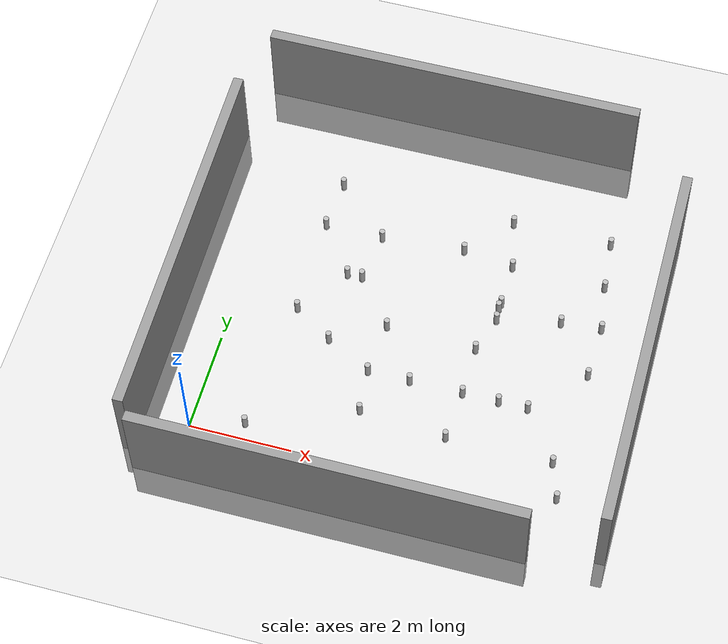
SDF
<sdf version="1.4">
 <world name="default">
  <light name="sun" type="directional">
   <pose>0 0 10 0 -0 0</pose>
   <diffuse>0.8 0.8 0.8 1</diffuse>
   <specular>0.2 0.2 0.2 1</specular>
   <attenuation>
    <range>1000</range>
    <constant>0.9</constant>
    <linear>0.01</linear>
    <quadratic>0.001</quadratic>
   </attenuation>
   <direction>-0.5 0.1 -0.9</direction>
  </light>
  <model name="ground_plane">
   <static>1</static>
   <link name="link">
    <collision name="collision">
     <geometry><plane><normal>0 0 1</normal><size>100 100</size></plane></geometry>
     <surface><friction><ode><mu>100</mu><mu2>50</mu2></ode></friction></surface>
    </collision>
    <visual name="visual">
     <cast_shadows>0</cast_shadows>
     <geometry><plane><normal>0 0 1</normal><size>100 100</size></plane></geometry>
     <material>
      <script><uri>file://media/materials/scripts/gazebo.material</uri><name>Gazebo/Grey</name></script>
     </material>
    </visual>
    <velocity_decay><linear>0</linear><angular>0</angular></velocity_decay>
   </link>
  </model>
  <physics type="ode">
   <max_step_size>0.001</max_step_size>
   <real_time_factor>1</real_time_factor>
   <real_time_update_rate>1000</real_time_update_rate>
   <gravity>0 0 -9.8</gravity>
  </physics>
  <scene><ambient>0.4 0.4 0.4 1</ambient><background>0.7 0.7 0.7 1</background><shadows>1</shadows></scene>
  <spherical_coordinates>
   <surface_model>EARTH_WGS84</surface_model>
   <latitude_deg>0</latitude_deg>
   <longitude_deg>0</longitude_deg>
   <elevation>0</elevation>
   <heading_deg>0</heading_deg>
  </spherical_coordinates>
  <model name="wall1">
   <static>1</static>
   <link name="link">
    <pose>0 0 0.42 0 -0 0</pose>
    <collision name="collision"><geometry><box><size>7.5 0.2 2.8</size></box></geometry></collision>
    <visual name="visual">
     <cast_shadows>0</cast_shadows>
     <geometry><box><size>7.5 0.2 2.8</size></box></geometry>
     <material>
      <script>
       <uri>model://grey_wall/materials/scripts</uri>
       <uri>model://grey_wall/materials/textures</uri>
       <name>vrc/grey_wall</name>
      </script>
     </material>
    </visual>
   </link>
   <pose>-1 3 0 0 -0 -1.55905</pose>
  </model>
  <model name="wall2">
   <static>1</static>
   <link name="link">
    <pose>0 0 0.42 0 -0 0</pose>
    <collision name="collision"><geometry><box><size>7.5 0.2 2.8</size></box></geometry></collision>
    <visual name="visual">
     <cast_shadows>0</cast_shadows>
     <geometry><box><size>7.5 0.2 2.8</size></box></geometry>
     <material>
      <script>
       <uri>model://grey_wall/materials/scripts</uri>
       <uri>model://grey_wall/materials/textures</uri>
       <name>vrc/grey_wall</name>
      </script>
     </material>
    </visual>
   </link>
   <pose>3 8 0 0 -0 0</pose>
  </model>
  <model name="wall3">
   <static>1</static>
   <link name="link">
    <pose>0 0 0.42 0 -0 0</pose>
    <collision name="collision"><geometry><box><size>7.5 0.2 2.8</size></box></geometry></collision>
    <visual name="visual">
     <cast_shadows>0</cast_shadows>
     <geometry><box><size>7.5 0.2 2.8</size></box></geometry>
     <material>
      <script>
       <uri>model://grey_wall/materials/scripts</uri>
       <uri>model://grey_wall/materials/textures</uri>
       <name>vrc/grey_wall</name>
      </script>
     </material>
    </visual>
   </link>
   <pose>8 3 0 0 -0 -1.55905</pose>
  </model>
  <model name="wall4">
   <static>1</static>
   <link name="link">
    <pose>0 0 0.42 0 -0 0</pose>
    <collision name="collision"><geometry><box><size>7.5 0.2 2.8</size></box></geometry></collision>
    <visual name="visual">
     <cast_shadows>0</cast_shadows>
     <geometry><box><size>7.5 0.2 2.8</size></box></geometry>
     <material>
      <script>
       <uri>model://grey_wall/materials/scripts</uri>
       <uri>model://grey_wall/materials/textures</uri>
       <name>vrc/grey_wall</name>
      </script>
     </material>
    </visual>
   </link>
   <pose>3 -1 0 0 -0 0</pose>
  </model>
  <model name="can6.976295223473">
   <link name="link">
    <pose>0 0 0.115 0 -0 0</pose>
    <inertial>
     <mass>0.39</mass>
     <inertia><ixx>0.00058</ixx><ixy>0</ixy><ixz>0</ixz><iyy>0.00058</iyy><iyz>0</iyz><izz>0.00019</izz></inertia>
    </inertial>
    <collision name="collision">
     <geometry><cylinder><radius>0.055</radius><length>0.33</length></cylinder></geometry>
    </collision>
    <visual name="visual">
     <geometry><cylinder><radius>0.055</radius><length>0.33</length></cylinder></geometry>
     <material>
      <script>
       <uri>model://beer/materials/scripts</uri>
       <uri>model://beer/materials/textures</uri>
       <name>Beer/Diffuse</name>
      </script>
     </material>
    </visual>
   </link>
   <pose>6.97629522347 3 -2e-06 1e-06 0 -9.5e-05</pose>
  </model>
  <model name="can6.85220188945">
   <link name="link">
    <pose>0 0 0.115 0 -0 0</pose>
    <inertial>
     <mass>0.39</mass>
     <inertia><ixx>0.00058</ixx><ixy>0</ixy><ixz>0</ixz><iyy>0.00058</iyy><iyz>0</iyz><izz>0.00019</izz></inertia>
    </inertial>
    <collision name="collision">
     <geometry><cylinder><radius>0.055</radius><length>0.33</length></cylinder></geometry>
    </collision>
    <visual name="visual">
     <geometry><cylinder><radius>0.055</radius><length>0.33</length></cylinder></geometry>
     <material>
      <script>
       <uri>model://beer/materials/scripts</uri>
       <uri>model://beer/materials/textures</uri>
       <name>Beer/Diffuse</name>
      </script>
     </material>
    </visual>
   </link>
   <pose>6.8522018894 5 -2e-06 1e-06 0 -9.5e-05</pose>
  </model>
  <model name="can6.761611687921">
   <link name="link">
    <pose>0 0 0.115 0 -0 0</pose>
    <inertial>
     <mass>0.39</mass>
     <inertia><ixx>0.00058</ixx><ixy>0</ixy><ixz>0</ixz><iyy>0.00058</iyy><iyz>0</iyz><izz>0.00019</izz></inertia>
    </inertial>
    <collision name="collision">
     <geometry><cylinder><radius>0.055</radius><length>0.33</length></cylinder></geometry>
    </collision>
    <visual name="visual">
     <geometry><cylinder><radius>0.055</radius><length>0.33</length></cylinder></geometry>
     <material>
      <script>
       <uri>model://beer/materials/scripts</uri>
       <uri>model://beer/materials/textures</uri>
       <name>Beer/Diffuse</name>
      </script>
     </material>
    </visual>
   </link>
   <pose>6.76161168792 1 -2e-06 1e-06 0 -9.5e-05</pose>
  </model>
  <model name="can1.213392185725">
   <link name="link">
    <pose>0 0 0.115 0 -0 0</pose>
    <inertial>
     <mass>0.39</mass>
     <inertia><ixx>0.00058</ixx><ixy>0</ixy><ixz>0</ixz><iyy>0.00058</iyy><iyz>0</iyz><izz>0.00019</izz></inertia>
    </inertial>
    <collision name="collision">
     <geometry><cylinder><radius>0.055</radius><length>0.33</length></cylinder></geometry>
    </collision>
    <visual name="visual">
     <geometry><cylinder><radius>0.055</radius><length>0.33</length></cylinder></geometry>
     <material>
      <script>
       <uri>model://beer/materials/scripts</uri>
       <uri>model://beer/materials/textures</uri>
       <name>Beer/Diffuse</name>
      </script>
     </material>
    </visual>
   </link>
   <pose>1.21339218572 5 -2e-06 1e-06 0 -9.5e-05</pose>
  </model>
  <model name="can31.13728604453">
   <link name="link">
    <pose>0 0 0.115 0 -0 0</pose>
    <inertial>
     <mass>0.39</mass>
     <inertia><ixx>0.00058</ixx><ixy>0</ixy><ixz>0</ixz><iyy>0.00058</iyy><iyz>0</iyz><izz>0.00019</izz></inertia>
    </inertial>
    <collision name="collision">
     <geometry><cylinder><radius>0.055</radius><length>0.33</length></cylinder></geometry>
    </collision>
    <visual name="visual">
     <geometry><cylinder><radius>0.055</radius><length>0.33</length></cylinder></geometry>
     <material>
      <script>
       <uri>model://beer/materials/scripts</uri>
       <uri>model://beer/materials/textures</uri>
       <name>Beer/Diffuse</name>
      </script>
     </material>
    </visual>
   </link>
   <pose>3 1.13728604453 -2e-06 1e-06 0 -9.5e-05</pose>
  </model>
  <model name="can74.06518622782">
   <link name="link">
    <pose>0 0 0.115 0 -0 0</pose>
    <inertial>
     <mass>0.39</mass>
     <inertia><ixx>0.00058</ixx><ixy>0</ixy><ixz>0</ixz><iyy>0.00058</iyy><iyz>0</iyz><izz>0.00019</izz></inertia>
    </inertial>
    <collision name="collision">
     <geometry><cylinder><radius>0.055</radius><length>0.33</length></cylinder></geometry>
    </collision>
    <visual name="visual">
     <geometry><cylinder><radius>0.055</radius><length>0.33</length></cylinder></geometry>
     <material>
      <script>
       <uri>model://beer/materials/scripts</uri>
       <uri>model://beer/materials/textures</uri>
       <name>Beer/Diffuse</name>
      </script>
     </material>
    </visual>
   </link>
   <pose>7 4.06518622782 -2e-06 1e-06 0 -9.5e-05</pose>
  </model>
  <model name="can5.007149621375">
   <link name="link">
    <pose>0 0 0.115 0 -0 0</pose>
    <inertial>
     <mass>0.39</mass>
     <inertia><ixx>0.00058</ixx><ixy>0</ixy><ixz>0</ixz><iyy>0.00058</iyy><iyz>0</iyz><izz>0.00019</izz></inertia>
    </inertial>
    <collision name="collision">
     <geometry><cylinder><radius>0.055</radius><length>0.33</length></cylinder></geometry>
    </collision>
    <visual name="visual">
     <geometry><cylinder><radius>0.055</radius><length>0.33</length></cylinder></geometry>
     <material>
      <script>
       <uri>model://beer/materials/scripts</uri>
       <uri>model://beer/materials/textures</uri>
       <name>Beer/Diffuse</name>
      </script>
     </material>
    </visual>
   </link>
   <pose>5.00714962137 5 -2e-06 1e-06 0 -9.5e-05</pose>
  </model>
  <model name="can6.7519798966">
   <link name="link">
    <pose>0 0 0.115 0 -0 0</pose>
    <inertial>
     <mass>0.39</mass>
     <inertia><ixx>0.00058</ixx><ixy>0</ixy><ixz>0</ixz><iyy>0.00058</iyy><iyz>0</iyz><izz>0.00019</izz></inertia>
    </inertial>
    <collision name="collision">
     <geometry><cylinder><radius>0.055</radius><length>0.33</length></cylinder></geometry>
    </collision>
    <visual name="visual">
     <geometry><cylinder><radius>0.055</radius><length>0.33</length></cylinder></geometry>
     <material>
      <script>
       <uri>model://beer/materials/scripts</uri>
       <uri>model://beer/materials/textures</uri>
       <name>Beer/Diffuse</name>
      </script>
     </material>
    </visual>
   </link>
   <pose>6.751979896 6 -2e-06 1e-06 0 -9.5e-05</pose>
  </model>
  <model name="can4.789343708476">
   <link name="link">
    <pose>0 0 0.115 0 -0 0</pose>
    <inertial>
     <mass>0.39</mass>
     <inertia><ixx>0.00058</ixx><ixy>0</ixy><ixz>0</ixz><iyy>0.00058</iyy><iyz>0</iyz><izz>0.00019</izz></inertia>
    </inertial>
    <collision name="collision">
     <geometry><cylinder><radius>0.055</radius><length>0.33</length></cylinder></geometry>
    </collision>
    <visual name="visual">
     <geometry><cylinder><radius>0.055</radius><length>0.33</length></cylinder></geometry>
     <material>
      <script>
       <uri>model://beer/materials/scripts</uri>
       <uri>model://beer/materials/textures</uri>
       <name>Beer/Diffuse</name>
      </script>
     </material>
    </visual>
   </link>
   <pose>4.78934370847 6 -2e-06 1e-06 0 -9.5e-05</pose>
  </model>
  <model name="can4.703793005831">
   <link name="link">
    <pose>0 0 0.115 0 -0 0</pose>
    <inertial>
     <mass>0.39</mass>
     <inertia><ixx>0.00058</ixx><ixy>0</ixy><ixz>0</ixz><iyy>0.00058</iyy><iyz>0</iyz><izz>0.00019</izz></inertia>
    </inertial>
    <collision name="collision">
     <geometry><cylinder><radius>0.055</radius><length>0.33</length></cylinder></geometry>
    </collision>
    <visual name="visual">
     <geometry><cylinder><radius>0.055</radius><length>0.33</length></cylinder></geometry>
     <material>
      <script>
       <uri>model://beer/materials/scripts</uri>
       <uri>model://beer/materials/textures</uri>
       <name>Beer/Diffuse</name>
      </script>
     </material>
    </visual>
   </link>
   <pose>4.70379300583 1 -2e-06 1e-06 0 -9.5e-05</pose>
  </model>
  <model name="can53.74434438889">
   <link name="link">
    <pose>0 0 0.115 0 -0 0</pose>
    <inertial>
     <mass>0.39</mass>
     <inertia><ixx>0.00058</ixx><ixy>0</ixy><ixz>0</ixz><iyy>0.00058</iyy><iyz>0</iyz><izz>0.00019</izz></inertia>
    </inertial>
    <collision name="collision">
     <geometry><cylinder><radius>0.055</radius><length>0.33</length></cylinder></geometry>
    </collision>
    <visual name="visual">
     <geometry><cylinder><radius>0.055</radius><length>0.33</length></cylinder></geometry>
     <material>
      <script>
       <uri>model://beer/materials/scripts</uri>
       <uri>model://beer/materials/textures</uri>
       <name>Beer/Diffuse</name>
      </script>
     </material>
    </visual>
   </link>
   <pose>5 3.74434438889 -2e-06 1e-06 0 -9.5e-05</pose>
  </model>
  <model name="can4.773142465533">
   <link name="link">
    <pose>0 0 0.115 0 -0 0</pose>
    <inertial>
     <mass>0.39</mass>
     <inertia><ixx>0.00058</ixx><ixy>0</ixy><ixz>0</ixz><iyy>0.00058</iyy><iyz>0</iyz><izz>0.00019</izz></inertia>
    </inertial>
    <collision name="collision">
     <geometry><cylinder><radius>0.055</radius><length>0.33</length></cylinder></geometry>
    </collision>
    <visual name="visual">
     <geometry><cylinder><radius>0.055</radius><length>0.33</length></cylinder></geometry>
     <material>
      <script>
       <uri>model://beer/materials/scripts</uri>
       <uri>model://beer/materials/textures</uri>
       <name>Beer/Diffuse</name>
      </script>
     </material>
    </visual>
   </link>
   <pose>4.77314246553 3 -2e-06 1e-06 0 -9.5e-05</pose>
  </model>
  <model name="can2.233164467114">
   <link name="link">
    <pose>0 0 0.115 0 -0 0</pose>
    <inertial>
     <mass>0.39</mass>
     <inertia><ixx>0.00058</ixx><ixy>0</ixy><ixz>0</ixz><iyy>0.00058</iyy><iyz>0</iyz><izz>0.00019</izz></inertia>
    </inertial>
    <collision name="collision">
     <geometry><cylinder><radius>0.055</radius><length>0.33</length></cylinder></geometry>
    </collision>
    <visual name="visual">
     <geometry><cylinder><radius>0.055</radius><length>0.33</length></cylinder></geometry>
     <material>
      <script>
       <uri>model://beer/materials/scripts</uri>
       <uri>model://beer/materials/textures</uri>
       <name>Beer/Diffuse</name>
      </script>
     </material>
    </visual>
   </link>
   <pose>2.23316446711 4 -2e-06 1e-06 0 -9.5e-05</pose>
  </model>
  <model name="can54.12564667825">
   <link name="link">
    <pose>0 0 0.115 0 -0 0</pose>
    <inertial>
     <mass>0.39</mass>
     <inertia><ixx>0.00058</ixx><ixy>0</ixy><ixz>0</ixz><iyy>0.00058</iyy><iyz>0</iyz><izz>0.00019</izz></inertia>
    </inertial>
    <collision name="collision">
     <geometry><cylinder><radius>0.055</radius><length>0.33</length></cylinder></geometry>
    </collision>
    <visual name="visual">
     <geometry><cylinder><radius>0.055</radius><length>0.33</length></cylinder></geometry>
     <material>
      <script>
       <uri>model://beer/materials/scripts</uri>
       <uri>model://beer/materials/textures</uri>
       <name>Beer/Diffuse</name>
      </script>
     </material>
    </visual>
   </link>
   <pose>5 4.12564667825 -2e-06 1e-06 0 -9.5e-05</pose>
  </model>
  <model name="can1.937531484594">
   <link name="link">
    <pose>0 0 0.115 0 -0 0</pose>
    <inertial>
     <mass>0.39</mass>
     <inertia><ixx>0.00058</ixx><ixy>0</ixy><ixz>0</ixz><iyy>0.00058</iyy><iyz>0</iyz><izz>0.00019</izz></inertia>
    </inertial>
    <collision name="collision">
     <geometry><cylinder><radius>0.055</radius><length>0.33</length></cylinder></geometry>
    </collision>
    <visual name="visual">
     <geometry><cylinder><radius>0.055</radius><length>0.33</length></cylinder></geometry>
     <material>
      <script>
       <uri>model://beer/materials/scripts</uri>
       <uri>model://beer/materials/textures</uri>
       <name>Beer/Diffuse</name>
      </script>
     </material>
    </visual>
   </link>
   <pose>1.93753148459 4 -2e-06 1e-06 0 -9.5e-05</pose>
  </model>
  <model name="can6.215128079214">
   <link name="link">
    <pose>0 0 0.115 0 -0 0</pose>
    <inertial>
     <mass>0.39</mass>
     <inertia><ixx>0.00058</ixx><ixy>0</ixy><ixz>0</ixz><iyy>0.00058</iyy><iyz>0</iyz><izz>0.00019</izz></inertia>
    </inertial>
    <collision name="collision">
     <geometry><cylinder><radius>0.055</radius><length>0.33</length></cylinder></geometry>
    </collision>
    <visual name="visual">
     <geometry><cylinder><radius>0.055</radius><length>0.33</length></cylinder></geometry>
     <material>
      <script>
       <uri>model://beer/materials/scripts</uri>
       <uri>model://beer/materials/textures</uri>
       <name>Beer/Diffuse</name>
      </script>
     </material>
    </visual>
   </link>
   <pose>6.21512807921 4 -2e-06 1e-06 0 -9.5e-05</pose>
  </model>
  <model name="can2.364126060585">
   <link name="link">
    <pose>0 0 0.115 0 -0 0</pose>
    <inertial>
     <mass>0.39</mass>
     <inertia><ixx>0.00058</ixx><ixy>0</ixy><ixz>0</ixz><iyy>0.00058</iyy><iyz>0</iyz><izz>0.00019</izz></inertia>
    </inertial>
    <collision name="collision">
     <geometry><cylinder><radius>0.055</radius><length>0.33</length></cylinder></geometry>
    </collision>
    <visual name="visual">
     <geometry><cylinder><radius>0.055</radius><length>0.33</length></cylinder></geometry>
     <material>
      <script>
       <uri>model://beer/materials/scripts</uri>
       <uri>model://beer/materials/textures</uri>
       <name>Beer/Diffuse</name>
      </script>
     </material>
    </visual>
   </link>
   <pose>2.36412606058 5 -2e-06 1e-06 0 -9.5e-05</pose>
  </model>
  <model name="can1.21665095083">
   <link name="link">
    <pose>0 0 0.115 0 -0 0</pose>
    <inertial>
     <mass>0.39</mass>
     <inertia><ixx>0.00058</ixx><ixy>0</ixy><ixz>0</ixz><iyy>0.00058</iyy><iyz>0</iyz><izz>0.00019</izz></inertia>
    </inertial>
    <collision name="collision">
     <geometry><cylinder><radius>0.055</radius><length>0.33</length></cylinder></geometry>
    </collision>
    <visual name="visual">
     <geometry><cylinder><radius>0.055</radius><length>0.33</length></cylinder></geometry>
     <material>
      <script>
       <uri>model://beer/materials/scripts</uri>
       <uri>model://beer/materials/textures</uri>
       <name>Beer/Diffuse</name>
      </script>
     </material>
    </visual>
   </link>
   <pose>1.2166509508 3 -2e-06 1e-06 0 -9.5e-05</pose>
  </model>
  <model name="can2.913905070272">
   <link name="link">
    <pose>0 0 0.115 0 -0 0</pose>
    <inertial>
     <mass>0.39</mass>
     <inertia><ixx>0.00058</ixx><ixy>0</ixy><ixz>0</ixz><iyy>0.00058</iyy><iyz>0</iyz><izz>0.00019</izz></inertia>
    </inertial>
    <collision name="collision">
     <geometry><cylinder><radius>0.055</radius><length>0.33</length></cylinder></geometry>
    </collision>
    <visual name="visual">
     <geometry><cylinder><radius>0.055</radius><length>0.33</length></cylinder></geometry>
     <material>
      <script>
       <uri>model://beer/materials/scripts</uri>
       <uri>model://beer/materials/textures</uri>
       <name>Beer/Diffuse</name>
      </script>
     </material>
    </visual>
   </link>
   <pose>2.91390507027 2 -2e-06 1e-06 0 -9.5e-05</pose>
  </model>
  <model name="can45.12858622379">
   <link name="link">
    <pose>0 0 0.115 0 -0 0</pose>
    <inertial>
     <mass>0.39</mass>
     <inertia><ixx>0.00058</ixx><ixy>0</ixy><ixz>0</ixz><iyy>0.00058</iyy><iyz>0</iyz><izz>0.00019</izz></inertia>
    </inertial>
    <collision name="collision">
     <geometry><cylinder><radius>0.055</radius><length>0.33</length></cylinder></geometry>
    </collision>
    <visual name="visual">
     <geometry><cylinder><radius>0.055</radius><length>0.33</length></cylinder></geometry>
     <material>
      <script>
       <uri>model://beer/materials/scripts</uri>
       <uri>model://beer/materials/textures</uri>
       <name>Beer/Diffuse</name>
      </script>
     </material>
    </visual>
   </link>
   <pose>4 5.12858622379 -2e-06 1e-06 0 -9.5e-05</pose>
  </model>
  <model name="can4.772846046562">
   <link name="link">
    <pose>0 0 0.115 0 -0 0</pose>
    <inertial>
     <mass>0.39</mass>
     <inertia><ixx>0.00058</ixx><ixy>0</ixy><ixz>0</ixz><iyy>0.00058</iyy><iyz>0</iyz><izz>0.00019</izz></inertia>
    </inertial>
    <collision name="collision">
     <geometry><cylinder><radius>0.055</radius><length>0.33</length></cylinder></geometry>
    </collision>
    <visual name="visual">
     <geometry><cylinder><radius>0.055</radius><length>0.33</length></cylinder></geometry>
     <material>
      <script>
       <uri>model://beer/materials/scripts</uri>
       <uri>model://beer/materials/textures</uri>
       <name>Beer/Diffuse</name>
      </script>
     </material>
    </visual>
   </link>
   <pose>4.77284604656 2 -2e-06 1e-06 0 -9.5e-05</pose>
  </model>
  <model name="can4.978737951744">
   <link name="link">
    <pose>0 0 0.115 0 -0 0</pose>
    <inertial>
     <mass>0.39</mass>
     <inertia><ixx>0.00058</ixx><ixy>0</ixy><ixz>0</ixz><iyy>0.00058</iyy><iyz>0</iyz><izz>0.00019</izz></inertia>
    </inertial>
    <collision name="collision">
     <geometry><cylinder><radius>0.055</radius><length>0.33</length></cylinder></geometry>
    </collision>
    <visual name="visual">
     <geometry><cylinder><radius>0.055</radius><length>0.33</length></cylinder></geometry>
     <material>
      <script>
       <uri>model://beer/materials/scripts</uri>
       <uri>model://beer/materials/textures</uri>
       <name>Beer/Diffuse</name>
      </script>
     </material>
    </visual>
   </link>
   <pose>4.97873795174 4 -2e-06 1e-06 0 -9.5e-05</pose>
  </model>
  <model name="can33.0516358562">
   <link name="link">
    <pose>0 0 0.115 0 -0 0</pose>
    <inertial>
     <mass>0.39</mass>
     <inertia><ixx>0.00058</ixx><ixy>0</ixy><ixz>0</ixz><iyy>0.00058</iyy><iyz>0</iyz><izz>0.00019</izz></inertia>
    </inertial>
    <collision name="collision">
     <geometry><cylinder><radius>0.055</radius><length>0.33</length></cylinder></geometry>
    </collision>
    <visual name="visual">
     <geometry><cylinder><radius>0.055</radius><length>0.33</length></cylinder></geometry>
     <material>
      <script>
       <uri>model://beer/materials/scripts</uri>
       <uri>model://beer/materials/textures</uri>
       <name>Beer/Diffuse</name>
      </script>
     </material>
    </visual>
   </link>
   <pose>3 3.0516358562 -2e-06 1e-06 0 -9.5e-05</pose>
  </model>
  <model name="can6.042507646422">
   <link name="link">
    <pose>0 0 0.115 0 -0 0</pose>
    <inertial>
     <mass>0.39</mass>
     <inertia><ixx>0.00058</ixx><ixy>0</ixy><ixz>0</ixz><iyy>0.00058</iyy><iyz>0</iyz><izz>0.00019</izz></inertia>
    </inertial>
    <collision name="collision">
     <geometry><cylinder><radius>0.055</radius><length>0.33</length></cylinder></geometry>
    </collision>
    <visual name="visual">
     <geometry><cylinder><radius>0.055</radius><length>0.33</length></cylinder></geometry>
     <material>
      <script>
       <uri>model://beer/materials/scripts</uri>
       <uri>model://beer/materials/textures</uri>
       <name>Beer/Diffuse</name>
      </script>
     </material>
    </visual>
   </link>
   <pose>6.04250764642 2 -2e-06 1e-06 0 -9.5e-05</pose>
  </model>
  <model name="can3.739072056512">
   <link name="link">
    <pose>0 0 0.115 0 -0 0</pose>
    <inertial>
     <mass>0.39</mass>
     <inertia><ixx>0.00058</ixx><ixy>0</ixy><ixz>0</ixz><iyy>0.00058</iyy><iyz>0</iyz><izz>0.00019</izz></inertia>
    </inertial>
    <collision name="collision">
     <geometry><cylinder><radius>0.055</radius><length>0.33</length></cylinder></geometry>
    </collision>
    <visual name="visual">
     <geometry><cylinder><radius>0.055</radius><length>0.33</length></cylinder></geometry>
     <material>
      <script>
       <uri>model://beer/materials/scripts</uri>
       <uri>model://beer/materials/textures</uri>
       <name>Beer/Diffuse</name>
      </script>
     </material>
    </visual>
   </link>
   <pose>3.73907205651 2 -2e-06 1e-06 0 -9.5e-05</pose>
  </model>
  <model name="can22.4835904039">
   <link name="link">
    <pose>0 0 0.115 0 -0 0</pose>
    <inertial>
     <mass>0.39</mass>
     <inertia><ixx>0.00058</ixx><ixy>0</ixy><ixz>0</ixz><iyy>0.00058</iyy><iyz>0</iyz><izz>0.00019</izz></inertia>
    </inertial>
    <collision name="collision">
     <geometry><cylinder><radius>0.055</radius><length>0.33</length></cylinder></geometry>
    </collision>
    <visual name="visual">
     <geometry><cylinder><radius>0.055</radius><length>0.33</length></cylinder></geometry>
     <material>
      <script>
       <uri>model://beer/materials/scripts</uri>
       <uri>model://beer/materials/textures</uri>
       <name>Beer/Diffuse</name>
      </script>
     </material>
    </visual>
   </link>
   <pose>2 2.4835904039 -2e-06 1e-06 0 -9.5e-05</pose>
  </model>
  <model name="can1.286174769946">
   <link name="link">
    <pose>0 0 0.115 0 -0 0</pose>
    <inertial>
     <mass>0.39</mass>
     <inertia><ixx>0.00058</ixx><ixy>0</ixy><ixz>0</ixz><iyy>0.00058</iyy><iyz>0</iyz><izz>0.00019</izz></inertia>
    </inertial>
    <collision name="collision">
     <geometry><cylinder><radius>0.055</radius><length>0.33</length></cylinder></geometry>
    </collision>
    <visual name="visual">
     <geometry><cylinder><radius>0.055</radius><length>0.33</length></cylinder></geometry>
     <material>
      <script>
       <uri>model://beer/materials/scripts</uri>
       <uri>model://beer/materials/textures</uri>
       <name>Beer/Diffuse</name>
      </script>
     </material>
    </visual>
   </link>
   <pose>1.28617476994 6 -2e-06 1e-06 0 -9.5e-05</pose>
  </model>
  <model name="can10.314440779202">
   <link name="link">
    <pose>0 0 0.115 0 -0 0</pose>
    <inertial>
     <mass>0.39</mass>
     <inertia><ixx>0.00058</ixx><ixy>0</ixy><ixz>0</ixz><iyy>0.00058</iyy><iyz>0</iyz><izz>0.00019</izz></inertia>
    </inertial>
    <collision name="collision">
     <geometry><cylinder><radius>0.055</radius><length>0.33</length></cylinder></geometry>
    </collision>
    <visual name="visual">
     <geometry><cylinder><radius>0.055</radius><length>0.33</length></cylinder></geometry>
     <material>
      <script>
       <uri>model://beer/materials/scripts</uri>
       <uri>model://beer/materials/textures</uri>
       <name>Beer/Diffuse</name>
      </script>
     </material>
    </visual>
   </link>
   <pose>1 0.314440779202 -2e-06 1e-06 0 -9.5e-05</pose>
  </model>
  <model name="can70.298996303785">
   <link name="link">
    <pose>0 0 0.115 0 -0 0</pose>
    <inertial>
     <mass>0.39</mass>
     <inertia><ixx>0.00058</ixx><ixy>0</ixy><ixz>0</ixz><iyy>0.00058</iyy><iyz>0</iyz><izz>0.00019</izz></inertia>
    </inertial>
    <collision name="collision">
     <geometry><cylinder><radius>0.055</radius><length>0.33</length></cylinder></geometry>
    </collision>
    <visual name="visual">
     <geometry><cylinder><radius>0.055</radius><length>0.33</length></cylinder></geometry>
     <material>
      <script>
       <uri>model://beer/materials/scripts</uri>
       <uri>model://beer/materials/textures</uri>
       <name>Beer/Diffuse</name>
      </script>
     </material>
    </visual>
   </link>
   <pose>7 0.298996303785 -2e-06 1e-06 0 -9.5e-05</pose>
  </model>
  <model name="can5.476503743132">
   <link name="link">
    <pose>0 0 0.115 0 -0 0</pose>
    <inertial>
     <mass>0.39</mass>
     <inertia><ixx>0.00058</ixx><ixy>0</ixy><ixz>0</ixz><iyy>0.00058</iyy><iyz>0</iyz><izz>0.00019</izz></inertia>
    </inertial>
    <collision name="collision">
     <geometry><cylinder><radius>0.055</radius><length>0.33</length></cylinder></geometry>
    </collision>
    <visual name="visual">
     <geometry><cylinder><radius>0.055</radius><length>0.33</length></cylinder></geometry>
     <material>
      <script>
       <uri>model://beer/materials/scripts</uri>
       <uri>model://beer/materials/textures</uri>
       <name>Beer/Diffuse</name>
      </script>
     </material>
    </visual>
   </link>
   <pose>5.47650374313 2 -2e-06 1e-06 0 -9.5e-05</pose>
  </model>
 </world>
</sdf>
